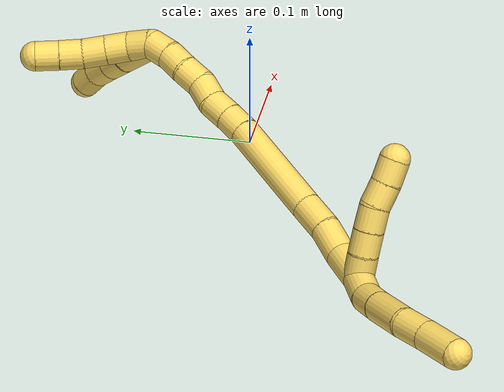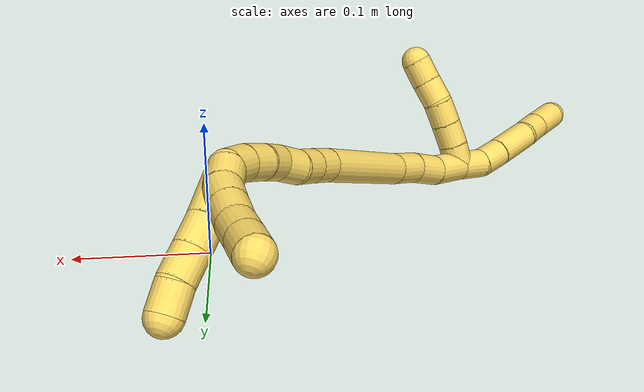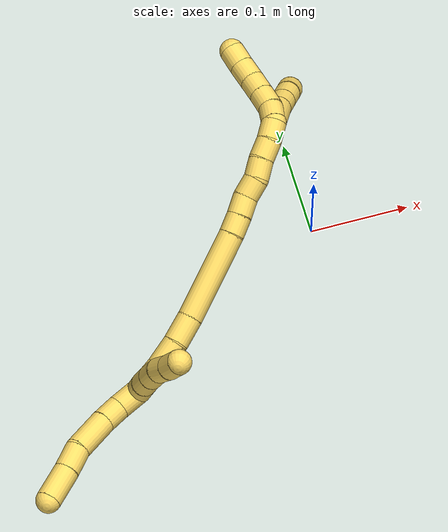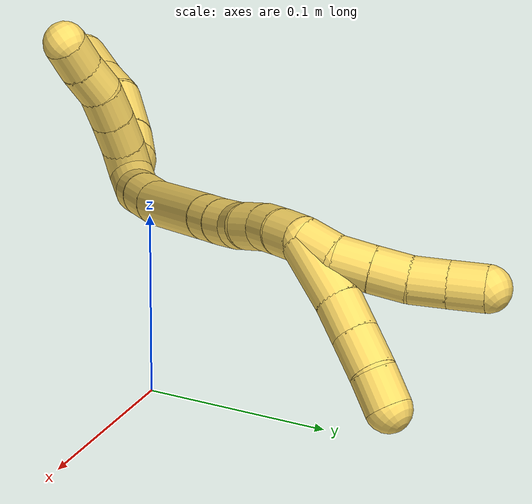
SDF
<sdf version="1.7">
 <world name="default">
  <model name="5">
   <static>0</static>
   <link name="5">
    <collision name="collision-cylinder-e_1_2_8">
     <pose>-0.010724 -8.4e-05 0.006736 0.012501 -1.00988 -0.00691</pose>
     <geometry><cylinder><radius>0.0125</radius><length>0.025329</length></cylinder></geometry>
     <surface>
      <friction><ode><mu>1.16</mu><mu2>1.16</mu2><slip1>0</slip1><slip2>0</slip2></ode></friction>
      <contact><ode><kp>1e+06</kp><kd>1</kd><max_vel>0</max_vel><min_depth>0.001</min_depth></ode></contact>
     </surface>
    </collision>
    <visual name="visual-cylinder-e_1_2_8">
     <pose>-0.010724 -8.4e-05 0.006736 0.012501 -1.00988 -0.00691</pose>
     <geometry><cylinder><radius>0.0125</radius><length>0.025329</length></cylinder></geometry>
     <material><ambient>1 0.858824 0.4 1</ambient></material>
    </visual>
    <collision name="collision-cylinder-e_2_8_9">
     <pose>-0.028727 0.000743 0.022547 -0.100132 -0.673595 0.035086</pose>
     <geometry><cylinder><radius>0.0125</radius><length>0.023338</length></cylinder></geometry>
     <surface>
      <friction><ode><mu>1.16</mu><mu2>1.16</mu2><slip1>0</slip1><slip2>0</slip2></ode></friction>
      <contact><ode><kp>1e+06</kp><kd>1</kd><max_vel>0</max_vel><min_depth>0.001</min_depth></ode></contact>
     </surface>
    </collision>
    <visual name="visual-cylinder-e_2_8_9">
     <pose>-0.028727 0.000743 0.022547 -0.100132 -0.673595 0.035086</pose>
     <geometry><cylinder><radius>0.0125</radius><length>0.023338</length></cylinder></geometry>
     <material><ambient>1 0.858824 0.4 1</ambient></material>
    </visual>
    <collision name="collision-cylinder-e_3_9_10">
     <pose>-0.047963 0.001991 0.047737 -0.020843 -0.63826 0.006887</pose>
     <geometry><cylinder><radius>0.0125</radius><length>0.040139</length></cylinder></geometry>
     <surface>
      <friction><ode><mu>1.16</mu><mu2>1.16</mu2><slip1>0</slip1><slip2>0</slip2></ode></friction>
      <contact><ode><kp>1e+06</kp><kd>1</kd><max_vel>0</max_vel><min_depth>0.001</min_depth></ode></contact>
     </surface>
    </collision>
    <visual name="visual-cylinder-e_3_9_10">
     <pose>-0.047963 0.001991 0.047737 -0.020843 -0.63826 0.006887</pose>
     <geometry><cylinder><radius>0.0125</radius><length>0.040139</length></cylinder></geometry>
     <material><ambient>1 0.858824 0.4 1</ambient></material>
    </visual>
    <collision name="collision-cylinder-e_4_10_11">
     <pose>-0.066913 -0.000692 0.074269 0.282073 -0.572652 -0.083553</pose>
     <geometry><cylinder><radius>0.0125</radius><length>0.025807</length></cylinder></geometry>
     <surface>
      <friction><ode><mu>1.16</mu><mu2>1.16</mu2><slip1>0</slip1><slip2>0</slip2></ode></friction>
      <contact><ode><kp>1e+06</kp><kd>1</kd><max_vel>0</max_vel><min_depth>0.001</min_depth></ode></contact>
     </surface>
    </collision>
    <visual name="visual-cylinder-e_4_10_11">
     <pose>-0.066913 -0.000692 0.074269 0.282073 -0.572652 -0.083553</pose>
     <geometry><cylinder><radius>0.0125</radius><length>0.025807</length></cylinder></geometry>
     <material><ambient>1 0.858824 0.4 1</ambient></material>
    </visual>
    <collision name="collision-cylinder-e_5_11_6">
     <pose>-0.08407 -0.006843 0.098824 0.218019 -0.612011 -0.069125</pose>
     <geometry><cylinder><radius>0.0125</radius><length>0.035387</length></cylinder></geometry>
     <surface>
      <friction><ode><mu>1.16</mu><mu2>1.16</mu2><slip1>0</slip1><slip2>0</slip2></ode></friction>
      <contact><ode><kp>1e+06</kp><kd>1</kd><max_vel>0</max_vel><min_depth>0.001</min_depth></ode></contact>
     </surface>
    </collision>
    <visual name="visual-cylinder-e_5_11_6">
     <pose>-0.08407 -0.006843 0.098824 0.218019 -0.612011 -0.069125</pose>
     <geometry><cylinder><radius>0.0125</radius><length>0.035387</length></cylinder></geometry>
     <material><ambient>1 0.858824 0.4 1</ambient></material>
    </visual>
    <collision name="collision-cylinder-e_1_2_12">
     <pose>0.006644 0.004684 0.005824 -0.677333 0.726643 -0.266257</pose>
     <geometry><cylinder><radius>0.0125</radius><length>0.02</length></cylinder></geometry>
     <surface>
      <friction><ode><mu>1.16</mu><mu2>1.16</mu2><slip1>0</slip1><slip2>0</slip2></ode></friction>
      <contact><ode><kp>1e+06</kp><kd>1</kd><max_vel>0</max_vel><min_depth>0.001</min_depth></ode></contact>
     </surface>
    </collision>
    <visual name="visual-cylinder-e_1_2_12">
     <pose>0.006644 0.004684 0.005824 -0.677333 0.726643 -0.266257</pose>
     <geometry><cylinder><radius>0.0125</radius><length>0.02</length></cylinder></geometry>
     <material><ambient>1 0.858824 0.4 1</ambient></material>
    </visual>
    <collision name="collision-cylinder-e_2_12_13">
     <pose>0.020528 0.0135 0.017171 -0.642291 0.809681 -0.28319</pose>
     <geometry><cylinder><radius>0.0125</radius><length>0.02</length></cylinder></geometry>
     <surface>
      <friction><ode><mu>1.16</mu><mu2>1.16</mu2><slip1>0</slip1><slip2>0</slip2></ode></friction>
      <contact><ode><kp>1e+06</kp><kd>1</kd><max_vel>0</max_vel><min_depth>0.001</min_depth></ode></contact>
     </surface>
    </collision>
    <visual name="visual-cylinder-e_2_12_13">
     <pose>0.020528 0.0135 0.017171 -0.642291 0.809681 -0.28319</pose>
     <geometry><cylinder><radius>0.0125</radius><length>0.02</length></cylinder></geometry>
     <material><ambient>1 0.858824 0.4 1</ambient></material>
    </visual>
    <collision name="collision-cylinder-e_3_13_14">
     <pose>0.03514 0.021485 0.028246 -0.60673 0.828778 -0.273655</pose>
     <geometry><cylinder><radius>0.0125</radius><length>0.02</length></cylinder></geometry>
     <surface>
      <friction><ode><mu>1.16</mu><mu2>1.16</mu2><slip1>0</slip1><slip2>0</slip2></ode></friction>
      <contact><ode><kp>1e+06</kp><kd>1</kd><max_vel>0</max_vel><min_depth>0.001</min_depth></ode></contact>
     </surface>
    </collision>
    <visual name="visual-cylinder-e_3_13_14">
     <pose>0.03514 0.021485 0.028246 -0.60673 0.828778 -0.273655</pose>
     <geometry><cylinder><radius>0.0125</radius><length>0.02</length></cylinder></geometry>
     <material><ambient>1 0.858824 0.4 1</ambient></material>
    </visual>
    <collision name="collision-cylinder-e_4_14_15">
     <pose>0.050263 0.027001 0.039891 -0.26633 0.887098 -0.127121</pose>
     <geometry><cylinder><radius>0.0125</radius><length>0.02</length></cylinder></geometry>
     <surface>
      <friction><ode><mu>1.16</mu><mu2>1.16</mu2><slip1>0</slip1><slip2>0</slip2></ode></friction>
      <contact><ode><kp>1e+06</kp><kd>1</kd><max_vel>0</max_vel><min_depth>0.001</min_depth></ode></contact>
     </surface>
    </collision>
    <visual name="visual-cylinder-e_4_14_15">
     <pose>0.050263 0.027001 0.039891 -0.26633 0.887098 -0.127121</pose>
     <geometry><cylinder><radius>0.0125</radius><length>0.02</length></cylinder></geometry>
     <material><ambient>1 0.858824 0.4 1</ambient></material>
    </visual>
    <collision name="collision-cylinder-e_5_15_5">
     <pose>0.065865 0.031254 0.051613 -0.431536 0.902635 -0.211671</pose>
     <geometry><cylinder><radius>0.0125</radius><length>0.02</length></cylinder></geometry>
     <surface>
      <friction><ode><mu>1.16</mu><mu2>1.16</mu2><slip1>0</slip1><slip2>0</slip2></ode></friction>
      <contact><ode><kp>1e+06</kp><kd>1</kd><max_vel>0</max_vel><min_depth>0.001</min_depth></ode></contact>
     </surface>
    </collision>
    <visual name="visual-cylinder-e_5_15_5">
     <pose>0.065865 0.031254 0.051613 -0.431536 0.902635 -0.211671</pose>
     <geometry><cylinder><radius>0.0125</radius><length>0.02</length></cylinder></geometry>
     <material><ambient>1 0.858824 0.4 1</ambient></material>
    </visual>
    <collision name="collision-cylinder-e_1_2_16">
     <pose>0.01209 0.002379 -0.009664 -2.90021 0.88205 -2.63861</pose>
     <geometry><cylinder><radius>0.0125</radius><length>0.031319</length></cylinder></geometry>
     <surface>
      <friction><ode><mu>1.16</mu><mu2>1.16</mu2><slip1>0</slip1><slip2>0</slip2></ode></friction>
      <contact><ode><kp>1e+06</kp><kd>1</kd><max_vel>0</max_vel><min_depth>0.001</min_depth></ode></contact>
     </surface>
    </collision>
    <visual name="visual-cylinder-e_1_2_16">
     <pose>0.01209 0.002379 -0.009664 -2.90021 0.88205 -2.63861</pose>
     <geometry><cylinder><radius>0.0125</radius><length>0.031319</length></cylinder></geometry>
     <material><ambient>1 0.858824 0.4 1</ambient></material>
    </visual>
    <collision name="collision-cylinder-e_2_16_17">
     <pose>0.035998 0.009351 -0.026061 -2.54295 0.967078 -2.079</pose>
     <geometry><cylinder><radius>0.0125</radius><length>0.028712</length></cylinder></geometry>
     <surface>
      <friction><ode><mu>1.16</mu><mu2>1.16</mu2><slip1>0</slip1><slip2>0</slip2></ode></friction>
      <contact><ode><kp>1e+06</kp><kd>1</kd><max_vel>0</max_vel><min_depth>0.001</min_depth></ode></contact>
     </surface>
    </collision>
    <visual name="visual-cylinder-e_2_16_17">
     <pose>0.035998 0.009351 -0.026061 -2.54295 0.967078 -2.079</pose>
     <geometry><cylinder><radius>0.0125</radius><length>0.028712</length></cylinder></geometry>
     <material><ambient>1 0.858824 0.4 1</ambient></material>
    </visual>
    <collision name="collision-cylinder-e_3_17_18">
     <pose>0.058207 0.018869 -0.041037 -2.60302 0.824832 -2.01604</pose>
     <geometry><cylinder><radius>0.0125</radius><length>0.028297</length></cylinder></geometry>
     <surface>
      <friction><ode><mu>1.16</mu><mu2>1.16</mu2><slip1>0</slip1><slip2>0</slip2></ode></friction>
      <contact><ode><kp>1e+06</kp><kd>1</kd><max_vel>0</max_vel><min_depth>0.001</min_depth></ode></contact>
     </surface>
    </collision>
    <visual name="visual-cylinder-e_3_17_18">
     <pose>0.058207 0.018869 -0.041037 -2.60302 0.824832 -2.01604</pose>
     <geometry><cylinder><radius>0.0125</radius><length>0.028297</length></cylinder></geometry>
     <material><ambient>1 0.858824 0.4 1</ambient></material>
    </visual>
    <collision name="collision-cylinder-e_4_18_19">
     <pose>0.101789 0.042925 -0.07377 -2.47844 0.818273 -1.79944</pose>
     <geometry><cylinder><radius>0.0125</radius><length>0.090937</length></cylinder></geometry>
     <surface>
      <friction><ode><mu>1.16</mu><mu2>1.16</mu2><slip1>0</slip1><slip2>0</slip2></ode></friction>
      <contact><ode><kp>1e+06</kp><kd>1</kd><max_vel>0</max_vel><min_depth>0.001</min_depth></ode></contact>
     </surface>
    </collision>
    <visual name="visual-cylinder-e_4_18_19">
     <pose>0.101789 0.042925 -0.07377 -2.47844 0.818273 -1.79944</pose>
     <geometry><cylinder><radius>0.0125</radius><length>0.090937</length></cylinder></geometry>
     <material><ambient>1 0.858824 0.4 1</ambient></material>
    </visual>
    <collision name="collision-cylinder-e_5_19_20">
     <pose>0.141653 0.066577 -0.104218 -2.49236 0.728568 -1.69541</pose>
     <geometry><cylinder><radius>0.0125</radius><length>0.020047</length></cylinder></geometry>
     <surface>
      <friction><ode><mu>1.16</mu><mu2>1.16</mu2><slip1>0</slip1><slip2>0</slip2></ode></friction>
      <contact><ode><kp>1e+06</kp><kd>1</kd><max_vel>0</max_vel><min_depth>0.001</min_depth></ode></contact>
     </surface>
    </collision>
    <visual name="visual-cylinder-e_5_19_20">
     <pose>0.141653 0.066577 -0.104218 -2.49236 0.728568 -1.69541</pose>
     <geometry><cylinder><radius>0.0125</radius><length>0.020047</length></cylinder></geometry>
     <material><ambient>1 0.858824 0.4 1</ambient></material>
    </visual>
    <collision name="collision-cylinder-e_6_20_21">
     <pose>0.154541 0.076094 -0.116293 -2.45689 0.666656 -1.54195</pose>
     <geometry><cylinder><radius>0.0125</radius><length>0.020099</length></cylinder></geometry>
     <surface>
      <friction><ode><mu>1.16</mu><mu2>1.16</mu2><slip1>0</slip1><slip2>0</slip2></ode></friction>
      <contact><ode><kp>1e+06</kp><kd>1</kd><max_vel>0</max_vel><min_depth>0.001</min_depth></ode></contact>
     </surface>
    </collision>
    <visual name="visual-cylinder-e_6_20_21">
     <pose>0.154541 0.076094 -0.116293 -2.45689 0.666656 -1.54195</pose>
     <geometry><cylinder><radius>0.0125</radius><length>0.020099</length></cylinder></geometry>
     <material><ambient>1 0.858824 0.4 1</ambient></material>
    </visual>
    <collision name="collision-cylinder-e_7_21_22">
     <pose>0.169018 0.085253 -0.12678 -2.38019 0.939933 -1.80687</pose>
     <geometry><cylinder><radius>0.0125</radius><length>0.020464</length></cylinder></geometry>
     <surface>
      <friction><ode><mu>1.16</mu><mu2>1.16</mu2><slip1>0</slip1><slip2>0</slip2></ode></friction>
      <contact><ode><kp>1e+06</kp><kd>1</kd><max_vel>0</max_vel><min_depth>0.001</min_depth></ode></contact>
     </surface>
    </collision>
    <visual name="visual-cylinder-e_7_21_22">
     <pose>0.169018 0.085253 -0.12678 -2.38019 0.939933 -1.80687</pose>
     <geometry><cylinder><radius>0.0125</radius><length>0.020464</length></cylinder></geometry>
     <material><ambient>1 0.858824 0.4 1</ambient></material>
    </visual>
    <collision name="collision-cylinder-e_8_22_23">
     <pose>0.183195 0.095152 -0.136821 -2.3507 0.632651 -1.32995</pose>
     <geometry><cylinder><radius>0.0125</radius><length>0.020006</length></cylinder></geometry>
     <surface>
      <friction><ode><mu>1.16</mu><mu2>1.16</mu2><slip1>0</slip1><slip2>0</slip2></ode></friction>
      <contact><ode><kp>1e+06</kp><kd>1</kd><max_vel>0</max_vel><min_depth>0.001</min_depth></ode></contact>
     </surface>
    </collision>
    <visual name="visual-cylinder-e_8_22_23">
     <pose>0.183195 0.095152 -0.136821 -2.3507 0.632651 -1.32995</pose>
     <geometry><cylinder><radius>0.0125</radius><length>0.020006</length></cylinder></geometry>
     <material><ambient>1 0.858824 0.4 1</ambient></material>
    </visual>
    <collision name="collision-cylinder-e_9_23_24">
     <pose>0.195774 0.105365 -0.148537 -2.50392 0.725085 -1.70932</pose>
     <geometry><cylinder><radius>0.0125</radius><length>0.020098</length></cylinder></geometry>
     <surface>
      <friction><ode><mu>1.16</mu><mu2>1.16</mu2><slip1>0</slip1><slip2>0</slip2></ode></friction>
      <contact><ode><kp>1e+06</kp><kd>1</kd><max_vel>0</max_vel><min_depth>0.001</min_depth></ode></contact>
     </surface>
    </collision>
    <visual name="visual-cylinder-e_9_23_24">
     <pose>0.195774 0.105365 -0.148537 -2.50392 0.725085 -1.70932</pose>
     <geometry><cylinder><radius>0.0125</radius><length>0.020098</length></cylinder></geometry>
     <material><ambient>1 0.858824 0.4 1</ambient></material>
    </visual>
    <collision name="collision-cylinder-e_10_24_1">
     <pose>0.207659 0.114668 -0.161627 -2.54114 0.548608 -1.47547</pose>
     <geometry><cylinder><radius>0.0125</radius><length>0.020021</length></cylinder></geometry>
     <surface>
      <friction><ode><mu>1.16</mu><mu2>1.16</mu2><slip1>0</slip1><slip2>0</slip2></ode></friction>
      <contact><ode><kp>1e+06</kp><kd>1</kd><max_vel>0</max_vel><min_depth>0.001</min_depth></ode></contact>
     </surface>
    </collision>
    <visual name="visual-cylinder-e_10_24_1">
     <pose>0.207659 0.114668 -0.161627 -2.54114 0.548608 -1.47547</pose>
     <geometry><cylinder><radius>0.0125</radius><length>0.020021</length></cylinder></geometry>
     <material><ambient>1 0.858824 0.4 1</ambient></material>
    </visual>
    <collision name="collision-cylinder-e_1_1_25">
     <pose>0.213331 0.118072 -0.187168 3.0648 0.024357 0.614026</pose>
     <geometry><cylinder><radius>0.0125</radius><length>0.037106</length></cylinder></geometry>
     <surface>
      <friction><ode><mu>1.16</mu><mu2>1.16</mu2><slip1>0</slip1><slip2>0</slip2></ode></friction>
      <contact><ode><kp>1e+06</kp><kd>1</kd><max_vel>0</max_vel><min_depth>0.001</min_depth></ode></contact>
     </surface>
    </collision>
    <visual name="visual-cylinder-e_1_1_25">
     <pose>0.213331 0.118072 -0.187168 3.0648 0.024357 0.614026</pose>
     <geometry><cylinder><radius>0.0125</radius><length>0.037106</length></cylinder></geometry>
     <material><ambient>1 0.858824 0.4 1</ambient></material>
    </visual>
    <collision name="collision-cylinder-e_2_25_26">
     <pose>0.214657 0.115189 -0.215895 2.99995 0.084287 1.07262</pose>
     <geometry><cylinder><radius>0.0125</radius><length>0.02075</length></cylinder></geometry>
     <surface>
      <friction><ode><mu>1.16</mu><mu2>1.16</mu2><slip1>0</slip1><slip2>0</slip2></ode></friction>
      <contact><ode><kp>1e+06</kp><kd>1</kd><max_vel>0</max_vel><min_depth>0.001</min_depth></ode></contact>
     </surface>
    </collision>
    <visual name="visual-cylinder-e_2_25_26">
     <pose>0.214657 0.115189 -0.215895 2.99995 0.084287 1.07262</pose>
     <geometry><cylinder><radius>0.0125</radius><length>0.02075</length></cylinder></geometry>
     <material><ambient>1 0.858824 0.4 1</ambient></material>
    </visual>
    <collision name="collision-cylinder-e_3_26_27">
     <pose>0.216542 0.112201 -0.236902 3.00061 0.092758 1.16299</pose>
     <geometry><cylinder><radius>0.0125</radius><length>0.021854</length></cylinder></geometry>
     <surface>
      <friction><ode><mu>1.16</mu><mu2>1.16</mu2><slip1>0</slip1><slip2>0</slip2></ode></friction>
      <contact><ode><kp>1e+06</kp><kd>1</kd><max_vel>0</max_vel><min_depth>0.001</min_depth></ode></contact>
     </surface>
    </collision>
    <visual name="visual-cylinder-e_3_26_27">
     <pose>0.216542 0.112201 -0.236902 3.00061 0.092758 1.16299</pose>
     <geometry><cylinder><radius>0.0125</radius><length>0.021854</length></cylinder></geometry>
     <material><ambient>1 0.858824 0.4 1</ambient></material>
    </visual>
    <collision name="collision-cylinder-e_4_27_4">
     <pose>0.216904 0.108338 -0.257525 2.90889 -0.064168 -0.53599</pose>
     <geometry><cylinder><radius>0.0125</radius><length>0.02029</length></cylinder></geometry>
     <surface>
      <friction><ode><mu>1.16</mu><mu2>1.16</mu2><slip1>0</slip1><slip2>0</slip2></ode></friction>
      <contact><ode><kp>1e+06</kp><kd>1</kd><max_vel>0</max_vel><min_depth>0.001</min_depth></ode></contact>
     </surface>
    </collision>
    <visual name="visual-cylinder-e_4_27_4">
     <pose>0.216904 0.108338 -0.257525 2.90889 -0.064168 -0.53599</pose>
     <geometry><cylinder><radius>0.0125</radius><length>0.02029</length></cylinder></geometry>
     <material><ambient>1 0.858824 0.4 1</ambient></material>
    </visual>
    <collision name="collision-cylinder-e_1_1_28">
     <pose>0.212713 0.123544 -0.177817 -2.72457 -0.01665 0.07865</pose>
     <geometry><cylinder><radius>0.0125</radius><length>0.02</length></cylinder></geometry>
     <surface>
      <friction><ode><mu>1.16</mu><mu2>1.16</mu2><slip1>0</slip1><slip2>0</slip2></ode></friction>
      <contact><ode><kp>1e+06</kp><kd>1</kd><max_vel>0</max_vel><min_depth>0.001</min_depth></ode></contact>
     </surface>
    </collision>
    <visual name="visual-cylinder-e_1_1_28">
     <pose>0.212713 0.123544 -0.177817 -2.72457 -0.01665 0.07865</pose>
     <geometry><cylinder><radius>0.0125</radius><length>0.02</length></cylinder></geometry>
     <material><ambient>1 0.858824 0.4 1</ambient></material>
    </visual>
    <collision name="collision-cylinder-e_2_28_29">
     <pose>0.210109 0.133251 -0.194836 -2.5188 -0.246256 0.734126</pose>
     <geometry><cylinder><radius>0.0125</radius><length>0.02</length></cylinder></geometry>
     <surface>
      <friction><ode><mu>1.16</mu><mu2>1.16</mu2><slip1>0</slip1><slip2>0</slip2></ode></friction>
      <contact><ode><kp>1e+06</kp><kd>1</kd><max_vel>0</max_vel><min_depth>0.001</min_depth></ode></contact>
     </surface>
    </collision>
    <visual name="visual-cylinder-e_2_28_29">
     <pose>0.210109 0.133251 -0.194836 -2.5188 -0.246256 0.734126</pose>
     <geometry><cylinder><radius>0.0125</radius><length>0.02</length></cylinder></geometry>
     <material><ambient>1 0.858824 0.4 1</ambient></material>
    </visual>
    <collision name="collision-cylinder-e_3_29_30">
     <pose>0.205091 0.144723 -0.210429 -2.49581 -0.260909 0.747363</pose>
     <geometry><cylinder><radius>0.0125</radius><length>0.02</length></cylinder></geometry>
     <surface>
      <friction><ode><mu>1.16</mu><mu2>1.16</mu2><slip1>0</slip1><slip2>0</slip2></ode></friction>
      <contact><ode><kp>1e+06</kp><kd>1</kd><max_vel>0</max_vel><min_depth>0.001</min_depth></ode></contact>
     </surface>
    </collision>
    <visual name="visual-cylinder-e_3_29_30">
     <pose>0.205091 0.144723 -0.210429 -2.49581 -0.260909 0.747363</pose>
     <geometry><cylinder><radius>0.0125</radius><length>0.02</length></cylinder></geometry>
     <material><ambient>1 0.858824 0.4 1</ambient></material>
    </visual>
    <collision name="collision-cylinder-e_4_30_31">
     <pose>0.200073 0.157475 -0.224922 -2.34445 -0.246411 0.571999</pose>
     <geometry><cylinder><radius>0.0125</radius><length>0.02</length></cylinder></geometry>
     <surface>
      <friction><ode><mu>1.16</mu><mu2>1.16</mu2><slip1>0</slip1><slip2>0</slip2></ode></friction>
      <contact><ode><kp>1e+06</kp><kd>1</kd><max_vel>0</max_vel><min_depth>0.001</min_depth></ode></contact>
     </surface>
    </collision>
    <visual name="visual-cylinder-e_4_30_31">
     <pose>0.200073 0.157475 -0.224922 -2.34445 -0.246411 0.571999</pose>
     <geometry><cylinder><radius>0.0125</radius><length>0.02</length></cylinder></geometry>
     <material><ambient>1 0.858824 0.4 1</ambient></material>
    </visual>
    <collision name="collision-cylinder-e_5_31_3">
     <pose>0.19554 0.171465 -0.238472 -2.33606 -0.210854 0.486888</pose>
     <geometry><cylinder><radius>0.0125</radius><length>0.02</length></cylinder></geometry>
     <surface>
      <friction><ode><mu>1.16</mu><mu2>1.16</mu2><slip1>0</slip1><slip2>0</slip2></ode></friction>
      <contact><ode><kp>1e+06</kp><kd>1</kd><max_vel>0</max_vel><min_depth>0.001</min_depth></ode></contact>
     </surface>
    </collision>
    <visual name="visual-cylinder-e_5_31_3">
     <pose>0.19554 0.171465 -0.238472 -2.33606 -0.210854 0.486888</pose>
     <geometry><cylinder><radius>0.0125</radius><length>0.02</length></cylinder></geometry>
     <material><ambient>1 0.858824 0.4 1</ambient></material>
    </visual>
    <collision name="collision-sphere-3">
     <pose>0.193447 0.178517 -0.245246 0 -0 0</pose>
     <geometry><sphere><radius>0.0125</radius></sphere></geometry>
     <surface>
      <friction><ode><mu>1.16</mu><mu2>1.16</mu2><slip1>0</slip1><slip2>0</slip2></ode></friction>
      <contact><ode><kp>1e+06</kp><kd>1</kd><max_vel>0</max_vel><min_depth>0.001</min_depth></ode></contact>
     </surface>
    </collision>
    <visual name="visual-sphere-3">
     <pose>0.193447 0.178517 -0.245246 0 -0 0</pose>
     <geometry><sphere><radius>0.0125</radius></sphere></geometry>
     <material><ambient>1 0.858824 0.4 1</ambient></material>
    </visual>
    <collision name="collision-sphere-31">
     <pose>0.197633 0.164413 -0.231698 0 -0 0</pose>
     <geometry><sphere><radius>0.0125</radius></sphere></geometry>
     <surface>
      <friction><ode><mu>1.16</mu><mu2>1.16</mu2><slip1>0</slip1><slip2>0</slip2></ode></friction>
      <contact><ode><kp>1e+06</kp><kd>1</kd><max_vel>0</max_vel><min_depth>0.001</min_depth></ode></contact>
     </surface>
    </collision>
    <visual name="visual-sphere-31">
     <pose>0.197633 0.164413 -0.231698 0 -0 0</pose>
     <geometry><sphere><radius>0.0125</radius></sphere></geometry>
     <material><ambient>1 0.858824 0.4 1</ambient></material>
    </visual>
    <collision name="collision-sphere-30">
     <pose>0.202512 0.150538 -0.218145 0 -0 0</pose>
     <geometry><sphere><radius>0.0125</radius></sphere></geometry>
     <surface>
      <friction><ode><mu>1.16</mu><mu2>1.16</mu2><slip1>0</slip1><slip2>0</slip2></ode></friction>
      <contact><ode><kp>1e+06</kp><kd>1</kd><max_vel>0</max_vel><min_depth>0.001</min_depth></ode></contact>
     </surface>
    </collision>
    <visual name="visual-sphere-30">
     <pose>0.202512 0.150538 -0.218145 0 -0 0</pose>
     <geometry><sphere><radius>0.0125</radius></sphere></geometry>
     <material><ambient>1 0.858824 0.4 1</ambient></material>
    </visual>
    <collision name="collision-sphere-29">
     <pose>0.207671 0.138908 -0.202713 0 -0 0</pose>
     <geometry><sphere><radius>0.0125</radius></sphere></geometry>
     <surface>
      <friction><ode><mu>1.16</mu><mu2>1.16</mu2><slip1>0</slip1><slip2>0</slip2></ode></friction>
      <contact><ode><kp>1e+06</kp><kd>1</kd><max_vel>0</max_vel><min_depth>0.001</min_depth></ode></contact>
     </surface>
    </collision>
    <visual name="visual-sphere-29">
     <pose>0.207671 0.138908 -0.202713 0 -0 0</pose>
     <geometry><sphere><radius>0.0125</radius></sphere></geometry>
     <material><ambient>1 0.858824 0.4 1</ambient></material>
    </visual>
    <collision name="collision-sphere-28">
     <pose>0.212547 0.127594 -0.186958 0 -0 0</pose>
     <geometry><sphere><radius>0.0125</radius></sphere></geometry>
     <surface>
      <friction><ode><mu>1.16</mu><mu2>1.16</mu2><slip1>0</slip1><slip2>0</slip2></ode></friction>
      <contact><ode><kp>1e+06</kp><kd>1</kd><max_vel>0</max_vel><min_depth>0.001</min_depth></ode></contact>
     </surface>
    </collision>
    <visual name="visual-sphere-28">
     <pose>0.212547 0.127594 -0.186958 0 -0 0</pose>
     <geometry><sphere><radius>0.0125</radius></sphere></geometry>
     <material><ambient>1 0.858824 0.4 1</ambient></material>
    </visual>
    <collision name="collision-sphere-4">
     <pose>0.216253 0.106003 -0.267376 0 -0 0</pose>
     <geometry><sphere><radius>0.0125</radius></sphere></geometry>
     <surface>
      <friction><ode><mu>1.16</mu><mu2>1.16</mu2><slip1>0</slip1><slip2>0</slip2></ode></friction>
      <contact><ode><kp>1e+06</kp><kd>1</kd><max_vel>0</max_vel><min_depth>0.001</min_depth></ode></contact>
     </surface>
    </collision>
    <visual name="visual-sphere-4">
     <pose>0.216253 0.106003 -0.267376 0 -0 0</pose>
     <geometry><sphere><radius>0.0125</radius></sphere></geometry>
     <material><ambient>1 0.858824 0.4 1</ambient></material>
    </visual>
    <collision name="collision-sphere-27">
     <pose>0.217554 0.110672 -0.247674 0 -0 0</pose>
     <geometry><sphere><radius>0.0125</radius></sphere></geometry>
     <surface>
      <friction><ode><mu>1.16</mu><mu2>1.16</mu2><slip1>0</slip1><slip2>0</slip2></ode></friction>
      <contact><ode><kp>1e+06</kp><kd>1</kd><max_vel>0</max_vel><min_depth>0.001</min_depth></ode></contact>
     </surface>
    </collision>
    <visual name="visual-sphere-27">
     <pose>0.217554 0.110672 -0.247674 0 -0 0</pose>
     <geometry><sphere><radius>0.0125</radius></sphere></geometry>
     <material><ambient>1 0.858824 0.4 1</ambient></material>
    </visual>
    <collision name="collision-sphere-26">
     <pose>0.21553 0.11373 -0.22613 0 -0 0</pose>
     <geometry><sphere><radius>0.0125</radius></sphere></geometry>
     <surface>
      <friction><ode><mu>1.16</mu><mu2>1.16</mu2><slip1>0</slip1><slip2>0</slip2></ode></friction>
      <contact><ode><kp>1e+06</kp><kd>1</kd><max_vel>0</max_vel><min_depth>0.001</min_depth></ode></contact>
     </surface>
    </collision>
    <visual name="visual-sphere-26">
     <pose>0.21553 0.11373 -0.22613 0 -0 0</pose>
     <geometry><sphere><radius>0.0125</radius></sphere></geometry>
     <material><ambient>1 0.858824 0.4 1</ambient></material>
    </visual>
    <collision name="collision-sphere-25">
     <pose>0.213783 0.116649 -0.205661 0 -0 0</pose>
     <geometry><sphere><radius>0.0125</radius></sphere></geometry>
     <surface>
      <friction><ode><mu>1.16</mu><mu2>1.16</mu2><slip1>0</slip1><slip2>0</slip2></ode></friction>
      <contact><ode><kp>1e+06</kp><kd>1</kd><max_vel>0</max_vel><min_depth>0.001</min_depth></ode></contact>
     </surface>
    </collision>
    <visual name="visual-sphere-25">
     <pose>0.213783 0.116649 -0.205661 0 -0 0</pose>
     <geometry><sphere><radius>0.0125</radius></sphere></geometry>
     <material><ambient>1 0.858824 0.4 1</ambient></material>
    </visual>
    <collision name="collision-sphere-1">
     <pose>0.21288 0.119495 -0.168675 0 -0 0</pose>
     <geometry><sphere><radius>0.0125</radius></sphere></geometry>
     <surface>
      <friction><ode><mu>1.16</mu><mu2>1.16</mu2><slip1>0</slip1><slip2>0</slip2></ode></friction>
      <contact><ode><kp>1e+06</kp><kd>1</kd><max_vel>0</max_vel><min_depth>0.001</min_depth></ode></contact>
     </surface>
    </collision>
    <visual name="visual-sphere-1">
     <pose>0.21288 0.119495 -0.168675 0 -0 0</pose>
     <geometry><sphere><radius>0.0125</radius></sphere></geometry>
     <material><ambient>1 0.858824 0.4 1</ambient></material>
    </visual>
    <collision name="collision-sphere-24">
     <pose>0.202438 0.109842 -0.15458 0 -0 0</pose>
     <geometry><sphere><radius>0.0125</radius></sphere></geometry>
     <surface>
      <friction><ode><mu>1.16</mu><mu2>1.16</mu2><slip1>0</slip1><slip2>0</slip2></ode></friction>
      <contact><ode><kp>1e+06</kp><kd>1</kd><max_vel>0</max_vel><min_depth>0.001</min_depth></ode></contact>
     </surface>
    </collision>
    <visual name="visual-sphere-24">
     <pose>0.202438 0.109842 -0.15458 0 -0 0</pose>
     <geometry><sphere><radius>0.0125</radius></sphere></geometry>
     <material><ambient>1 0.858824 0.4 1</ambient></material>
    </visual>
    <collision name="collision-sphere-23">
     <pose>0.18911 0.100887 -0.142494 0 -0 0</pose>
     <geometry><sphere><radius>0.0125</radius></sphere></geometry>
     <surface>
      <friction><ode><mu>1.16</mu><mu2>1.16</mu2><slip1>0</slip1><slip2>0</slip2></ode></friction>
      <contact><ode><kp>1e+06</kp><kd>1</kd><max_vel>0</max_vel><min_depth>0.001</min_depth></ode></contact>
     </surface>
    </collision>
    <visual name="visual-sphere-23">
     <pose>0.18911 0.100887 -0.142494 0 -0 0</pose>
     <geometry><sphere><radius>0.0125</radius></sphere></geometry>
     <material><ambient>1 0.858824 0.4 1</ambient></material>
    </visual>
    <collision name="collision-sphere-22">
     <pose>0.177281 0.089417 -0.131148 0 -0 0</pose>
     <geometry><sphere><radius>0.0125</radius></sphere></geometry>
     <surface>
      <friction><ode><mu>1.16</mu><mu2>1.16</mu2><slip1>0</slip1><slip2>0</slip2></ode></friction>
      <contact><ode><kp>1e+06</kp><kd>1</kd><max_vel>0</max_vel><min_depth>0.001</min_depth></ode></contact>
     </surface>
    </collision>
    <visual name="visual-sphere-22">
     <pose>0.177281 0.089417 -0.131148 0 -0 0</pose>
     <geometry><sphere><radius>0.0125</radius></sphere></geometry>
     <material><ambient>1 0.858824 0.4 1</ambient></material>
    </visual>
    <collision name="collision-sphere-21">
     <pose>0.160755 0.081088 -0.122411 0 -0 0</pose>
     <geometry><sphere><radius>0.0125</radius></sphere></geometry>
     <surface>
      <friction><ode><mu>1.16</mu><mu2>1.16</mu2><slip1>0</slip1><slip2>0</slip2></ode></friction>
      <contact><ode><kp>1e+06</kp><kd>1</kd><max_vel>0</max_vel><min_depth>0.001</min_depth></ode></contact>
     </surface>
    </collision>
    <visual name="visual-sphere-21">
     <pose>0.160755 0.081088 -0.122411 0 -0 0</pose>
     <geometry><sphere><radius>0.0125</radius></sphere></geometry>
     <material><ambient>1 0.858824 0.4 1</ambient></material>
    </visual>
    <collision name="collision-sphere-6">
     <pose>-0.094235 -0.009975 0.112963 0 -0 0</pose>
     <geometry><sphere><radius>0.0125</radius></sphere></geometry>
     <surface>
      <friction><ode><mu>1.16</mu><mu2>1.16</mu2><slip1>0</slip1><slip2>0</slip2></ode></friction>
      <contact><ode><kp>1e+06</kp><kd>1</kd><max_vel>0</max_vel><min_depth>0.001</min_depth></ode></contact>
     </surface>
    </collision>
    <visual name="visual-sphere-6">
     <pose>-0.094235 -0.009975 0.112963 0 -0 0</pose>
     <geometry><sphere><radius>0.0125</radius></sphere></geometry>
     <material><ambient>1 0.858824 0.4 1</ambient></material>
    </visual>
    <collision name="collision-sphere-11">
     <pose>-0.073905 -0.00371 0.084685 0 -0 0</pose>
     <geometry><sphere><radius>0.0125</radius></sphere></geometry>
     <surface>
      <friction><ode><mu>1.16</mu><mu2>1.16</mu2><slip1>0</slip1><slip2>0</slip2></ode></friction>
      <contact><ode><kp>1e+06</kp><kd>1</kd><max_vel>0</max_vel><min_depth>0.001</min_depth></ode></contact>
     </surface>
    </collision>
    <visual name="visual-sphere-11">
     <pose>-0.073905 -0.00371 0.084685 0 -0 0</pose>
     <geometry><sphere><radius>0.0125</radius></sphere></geometry>
     <material><ambient>1 0.858824 0.4 1</ambient></material>
    </visual>
    <collision name="collision-sphere-10">
     <pose>-0.059921 0.002327 0.063852 0 -0 0</pose>
     <geometry><sphere><radius>0.0125</radius></sphere></geometry>
     <surface>
      <friction><ode><mu>1.16</mu><mu2>1.16</mu2><slip1>0</slip1><slip2>0</slip2></ode></friction>
      <contact><ode><kp>1e+06</kp><kd>1</kd><max_vel>0</max_vel><min_depth>0.001</min_depth></ode></contact>
     </surface>
    </collision>
    <visual name="visual-sphere-10">
     <pose>-0.059921 0.002327 0.063852 0 -0 0</pose>
     <geometry><sphere><radius>0.0125</radius></sphere></geometry>
     <material><ambient>1 0.858824 0.4 1</ambient></material>
    </visual>
    <collision name="collision-sphere-9">
     <pose>-0.036006 0.001655 0.031622 0 -0 0</pose>
     <geometry><sphere><radius>0.0125</radius></sphere></geometry>
     <surface>
      <friction><ode><mu>1.16</mu><mu2>1.16</mu2><slip1>0</slip1><slip2>0</slip2></ode></friction>
      <contact><ode><kp>1e+06</kp><kd>1</kd><max_vel>0</max_vel><min_depth>0.001</min_depth></ode></contact>
     </surface>
    </collision>
    <visual name="visual-sphere-9">
     <pose>-0.036006 0.001655 0.031622 0 -0 0</pose>
     <geometry><sphere><radius>0.0125</radius></sphere></geometry>
     <material><ambient>1 0.858824 0.4 1</ambient></material>
    </visual>
    <collision name="collision-sphere-2">
     <geometry><sphere><radius>0.0125</radius></sphere></geometry>
     <surface>
      <friction><ode><mu>1.16</mu><mu2>1.16</mu2><slip1>0</slip1><slip2>0</slip2></ode></friction>
      <contact><ode><kp>1e+06</kp><kd>1</kd><max_vel>0</max_vel><min_depth>0.001</min_depth></ode></contact>
     </surface>
    </collision>
    <visual name="visual-sphere-2">
     <geometry><sphere><radius>0.0125</radius></sphere></geometry>
     <material><ambient>1 0.858824 0.4 1</ambient></material>
    </visual>
    <collision name="collision-sphere-19">
     <pose>0.13498 0.062056 -0.098261 0 -0 0</pose>
     <geometry><sphere><radius>0.0125</radius></sphere></geometry>
     <surface>
      <friction><ode><mu>1.16</mu><mu2>1.16</mu2><slip1>0</slip1><slip2>0</slip2></ode></friction>
      <contact><ode><kp>1e+06</kp><kd>1</kd><max_vel>0</max_vel><min_depth>0.001</min_depth></ode></contact>
     </surface>
    </collision>
    <visual name="visual-sphere-19">
     <pose>0.13498 0.062056 -0.098261 0 -0 0</pose>
     <geometry><sphere><radius>0.0125</radius></sphere></geometry>
     <material><ambient>1 0.858824 0.4 1</ambient></material>
    </visual>
    <collision name="collision-sphere-8">
     <pose>-0.021447 -0.000168 0.013473 0 -0 0</pose>
     <geometry><sphere><radius>0.0125</radius></sphere></geometry>
     <surface>
      <friction><ode><mu>1.16</mu><mu2>1.16</mu2><slip1>0</slip1><slip2>0</slip2></ode></friction>
      <contact><ode><kp>1e+06</kp><kd>1</kd><max_vel>0</max_vel><min_depth>0.001</min_depth></ode></contact>
     </surface>
    </collision>
    <visual name="visual-sphere-8">
     <pose>-0.021447 -0.000168 0.013473 0 -0 0</pose>
     <geometry><sphere><radius>0.0125</radius></sphere></geometry>
     <material><ambient>1 0.858824 0.4 1</ambient></material>
    </visual>
    <collision name="collision-sphere-12">
     <pose>0.013287 0.009368 0.011648 0 -0 0</pose>
     <geometry><sphere><radius>0.0125</radius></sphere></geometry>
     <surface>
      <friction><ode><mu>1.16</mu><mu2>1.16</mu2><slip1>0</slip1><slip2>0</slip2></ode></friction>
      <contact><ode><kp>1e+06</kp><kd>1</kd><max_vel>0</max_vel><min_depth>0.001</min_depth></ode></contact>
     </surface>
    </collision>
    <visual name="visual-sphere-12">
     <pose>0.013287 0.009368 0.011648 0 -0 0</pose>
     <geometry><sphere><radius>0.0125</radius></sphere></geometry>
     <material><ambient>1 0.858824 0.4 1</ambient></material>
    </visual>
    <collision name="collision-sphere-13">
     <pose>0.027769 0.017632 0.022694 0 -0 0</pose>
     <geometry><sphere><radius>0.0125</radius></sphere></geometry>
     <surface>
      <friction><ode><mu>1.16</mu><mu2>1.16</mu2><slip1>0</slip1><slip2>0</slip2></ode></friction>
      <contact><ode><kp>1e+06</kp><kd>1</kd><max_vel>0</max_vel><min_depth>0.001</min_depth></ode></contact>
     </surface>
    </collision>
    <visual name="visual-sphere-13">
     <pose>0.027769 0.017632 0.022694 0 -0 0</pose>
     <geometry><sphere><radius>0.0125</radius></sphere></geometry>
     <material><ambient>1 0.858824 0.4 1</ambient></material>
    </visual>
    <collision name="collision-sphere-14">
     <pose>0.042511 0.025338 0.033797 0 -0 0</pose>
     <geometry><sphere><radius>0.0125</radius></sphere></geometry>
     <surface>
      <friction><ode><mu>1.16</mu><mu2>1.16</mu2><slip1>0</slip1><slip2>0</slip2></ode></friction>
      <contact><ode><kp>1e+06</kp><kd>1</kd><max_vel>0</max_vel><min_depth>0.001</min_depth></ode></contact>
     </surface>
    </collision>
    <visual name="visual-sphere-14">
     <pose>0.042511 0.025338 0.033797 0 -0 0</pose>
     <geometry><sphere><radius>0.0125</radius></sphere></geometry>
     <material><ambient>1 0.858824 0.4 1</ambient></material>
    </visual>
    <collision name="collision-sphere-15">
     <pose>0.058016 0.028663 0.045985 0 -0 0</pose>
     <geometry><sphere><radius>0.0125</radius></sphere></geometry>
     <surface>
      <friction><ode><mu>1.16</mu><mu2>1.16</mu2><slip1>0</slip1><slip2>0</slip2></ode></friction>
      <contact><ode><kp>1e+06</kp><kd>1</kd><max_vel>0</max_vel><min_depth>0.001</min_depth></ode></contact>
     </surface>
    </collision>
    <visual name="visual-sphere-15">
     <pose>0.058016 0.028663 0.045985 0 -0 0</pose>
     <geometry><sphere><radius>0.0125</radius></sphere></geometry>
     <material><ambient>1 0.858824 0.4 1</ambient></material>
    </visual>
    <collision name="collision-sphere-5">
     <pose>0.073715 0.033846 0.05724 0 -0 0</pose>
     <geometry><sphere><radius>0.0125</radius></sphere></geometry>
     <surface>
      <friction><ode><mu>1.16</mu><mu2>1.16</mu2><slip1>0</slip1><slip2>0</slip2></ode></friction>
      <contact><ode><kp>1e+06</kp><kd>1</kd><max_vel>0</max_vel><min_depth>0.001</min_depth></ode></contact>
     </surface>
    </collision>
    <visual name="visual-sphere-5">
     <pose>0.073715 0.033846 0.05724 0 -0 0</pose>
     <geometry><sphere><radius>0.0125</radius></sphere></geometry>
     <material><ambient>1 0.858824 0.4 1</ambient></material>
    </visual>
    <collision name="collision-sphere-16">
     <pose>0.02418 0.004758 -0.019328 0 -0 0</pose>
     <geometry><sphere><radius>0.0125</radius></sphere></geometry>
     <surface>
      <friction><ode><mu>1.16</mu><mu2>1.16</mu2><slip1>0</slip1><slip2>0</slip2></ode></friction>
      <contact><ode><kp>1e+06</kp><kd>1</kd><max_vel>0</max_vel><min_depth>0.001</min_depth></ode></contact>
     </surface>
    </collision>
    <visual name="visual-sphere-16">
     <pose>0.02418 0.004758 -0.019328 0 -0 0</pose>
     <geometry><sphere><radius>0.0125</radius></sphere></geometry>
     <material><ambient>1 0.858824 0.4 1</ambient></material>
    </visual>
    <collision name="collision-sphere-17">
     <pose>0.047816 0.013944 -0.032794 0 -0 0</pose>
     <geometry><sphere><radius>0.0125</radius></sphere></geometry>
     <surface>
      <friction><ode><mu>1.16</mu><mu2>1.16</mu2><slip1>0</slip1><slip2>0</slip2></ode></friction>
      <contact><ode><kp>1e+06</kp><kd>1</kd><max_vel>0</max_vel><min_depth>0.001</min_depth></ode></contact>
     </surface>
    </collision>
    <visual name="visual-sphere-17">
     <pose>0.047816 0.013944 -0.032794 0 -0 0</pose>
     <geometry><sphere><radius>0.0125</radius></sphere></geometry>
     <material><ambient>1 0.858824 0.4 1</ambient></material>
    </visual>
    <collision name="collision-sphere-18">
     <pose>0.068599 0.023794 -0.04928 0 -0 0</pose>
     <geometry><sphere><radius>0.0125</radius></sphere></geometry>
     <surface>
      <friction><ode><mu>1.16</mu><mu2>1.16</mu2><slip1>0</slip1><slip2>0</slip2></ode></friction>
      <contact><ode><kp>1e+06</kp><kd>1</kd><max_vel>0</max_vel><min_depth>0.001</min_depth></ode></contact>
     </surface>
    </collision>
    <visual name="visual-sphere-18">
     <pose>0.068599 0.023794 -0.04928 0 -0 0</pose>
     <geometry><sphere><radius>0.0125</radius></sphere></geometry>
     <material><ambient>1 0.858824 0.4 1</ambient></material>
    </visual>
    <collision name="collision-sphere-20">
     <pose>0.148327 0.071099 -0.110175 0 -0 0</pose>
     <geometry><sphere><radius>0.0125</radius></sphere></geometry>
     <surface>
      <friction><ode><mu>1.16</mu><mu2>1.16</mu2><slip1>0</slip1><slip2>0</slip2></ode></friction>
      <contact><ode><kp>1e+06</kp><kd>1</kd><max_vel>0</max_vel><min_depth>0.001</min_depth></ode></contact>
     </surface>
    </collision>
    <visual name="visual-sphere-20">
     <pose>0.148327 0.071099 -0.110175 0 -0 0</pose>
     <geometry><sphere><radius>0.0125</radius></sphere></geometry>
     <material><ambient>1 0.858824 0.4 1</ambient></material>
    </visual>
    <inertial>
     <pose>0.095268 0.058041 -0.0757 0 -0 0</pose>
     <mass>0.75</mass>
     <inertia>
      <ixx>-1.6e-05</ixx>
      <ixy>0</ixy>
      <ixz>0</ixz>
      <iyy>3.3e-05</iyy>
      <iyz>0</iyz>
      <izz>-0.000107</izz>
     </inertia>
    </inertial>
   </link>
   <pose>-0.213108 -0.127899 0.013777 0.863934 -0.481231 0.006814</pose>
  </model>
 </world>
</sdf>
